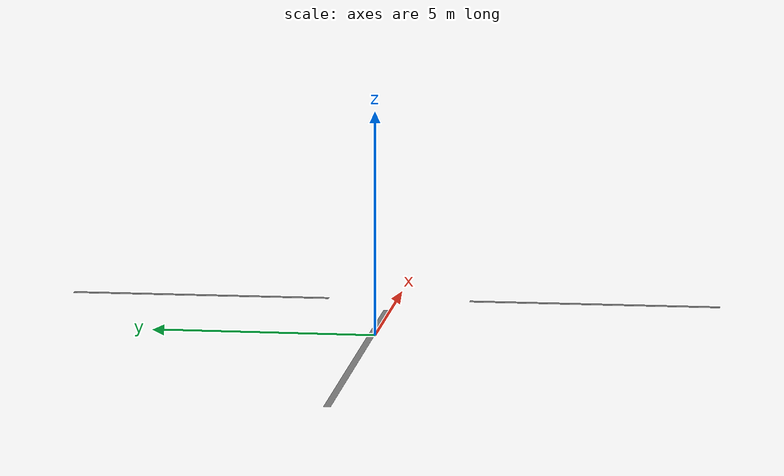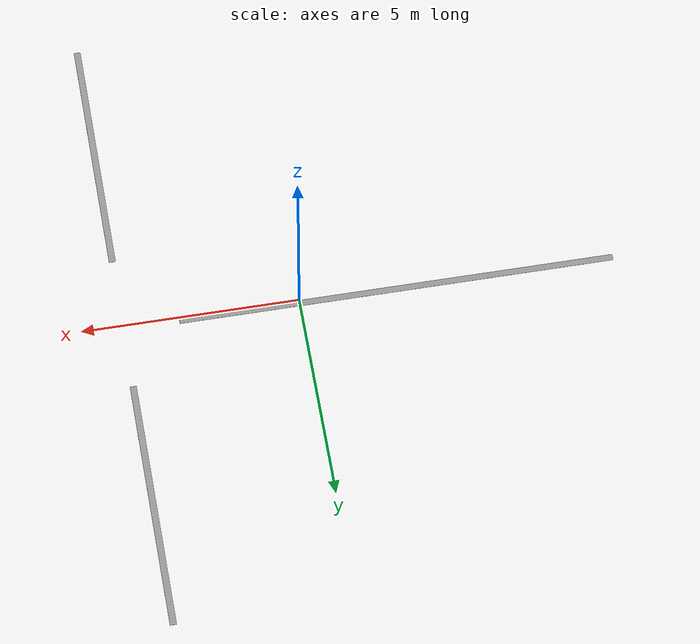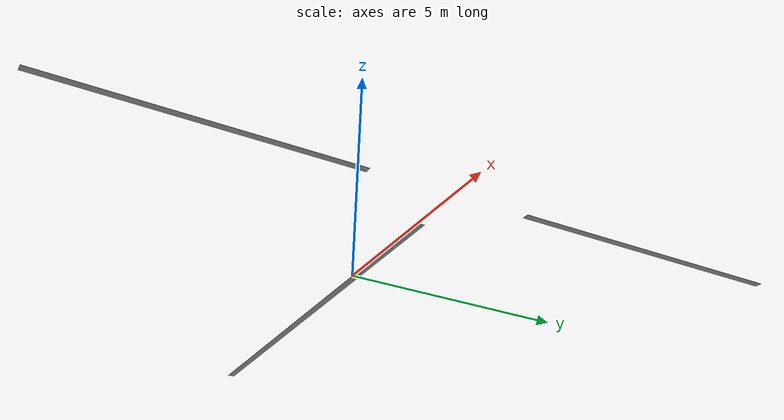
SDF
<?xml version='1.0'?>
<sdf version='1.7'>
  <model name='hospital'>
    <pose>-1.562 0.0685 0 0 -0 0</pose>
    <link name='Wall_77'>
      <collision name='Wall_77_Collision'>
        <geometry>
          <box>
            <size>10 0.15 0.005</size>
          </box>
        </geometry>
        <pose>0 0 0.0025 0 -0 0</pose>
      </collision>
      <visual name='Wall_77_Visual'>
        <pose>0 0 0.0025 0 -0 0</pose>
        <geometry>
          <box>
            <size>10 0.15 0.005</size>
          </box>
        </geometry>
        <material>
          <script>
            <uri>file://media/materials/scripts/gazebo.material</uri>
            <name>Gazebo/Grey</name>
          </script>
          <ambient>1 1 1 1</ambient>
        </material>
        <meta>
          <layer>0</layer>
        </meta>
      </visual>
      <pose>-0.677 0.0125 0 0 -0 0</pose>
    </link>
    <link name='Wall_79'>
      <collision name='Wall_79_Collision'>
        <geometry>
          <box>
            <size>5.75 0.15 0.005</size>
          </box>
        </geometry>
        <pose>0 0 0.0025 0 -0 0</pose>
      </collision>
      <visual name='Wall_79_Visual'>
        <pose>0 0 0.0025 0 -0 0</pose>
        <geometry>
          <box>
            <size>5.75 0.15 0.005</size>
          </box>
        </geometry>
        <material>
          <script>
            <uri>file://media/materials/scripts/gazebo.material</uri>
            <name>Gazebo/Grey</name>
          </script>
          <ambient>1 1 1 1</ambient>
        </material>
        <meta>
          <layer>0</layer>
        </meta>
      </visual>
      <pose>5.598 -4.6385 0 0 -0 -1.5708</pose>
    </link>
    <link name='Wall_81'>
      <collision name='Wall_81_Collision'>
        <geometry>
          <box>
            <size>6 0.15 0.005</size>
          </box>
        </geometry>
        <pose>0 0 0.0025 0 -0 0</pose>
      </collision>
      <visual name='Wall_81_Visual'>
        <pose>0 0 0.0025 0 -0 0</pose>
        <geometry>
          <box>
            <size>6 0.15 0.005</size>
          </box>
        </geometry>
        <material>
          <script>
            <uri>file://media/materials/scripts/gazebo.material</uri>
            <name>Gazebo/Grey</name>
          </script>
          <ambient>1 1 1 1</ambient>
        </material>
        <meta>
          <layer>0</layer>
        </meta>
      </visual>
      <pose>5.602 4.5135 0 0 -0 1.5708</pose>
    </link>
    <static>1</static>
  </model>
</sdf>
